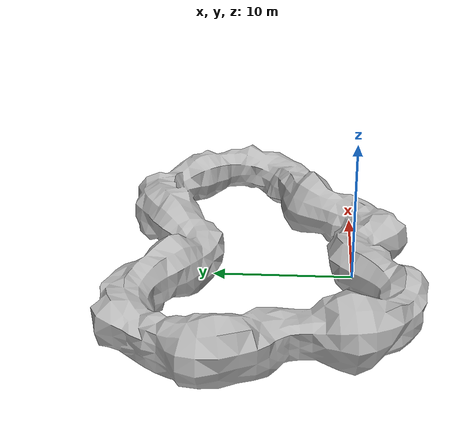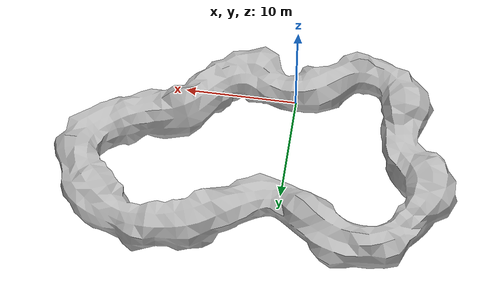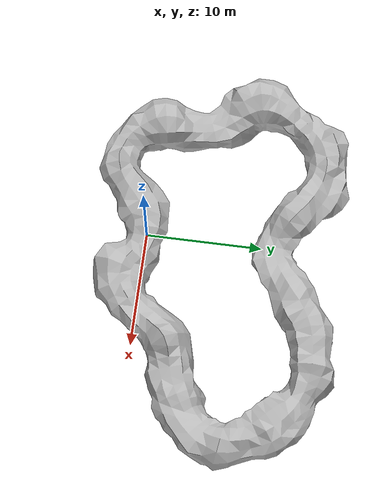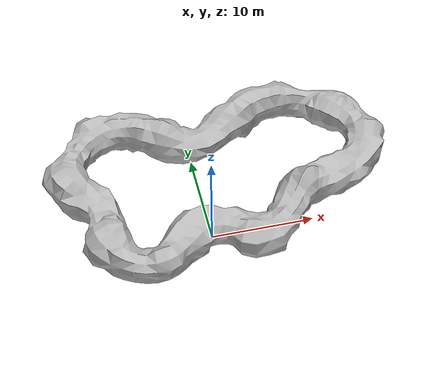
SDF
<?xml version="1.0" ?>
<sdf version="1.5">
  <world name="default">
    <include>
      <uri>model://simple_cave</uri>
    </include>
  </world>
</sdf>

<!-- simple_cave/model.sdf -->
<sdf version="1.5">
  <model name="simple_cave">
    <static>true</static>
    <pose>0 0 0 0 0 0</pose>
    <link name="simple_cave">
      <collision name="collision">
        <geometry>
          <mesh>
            <uri>model://simple_cave/cave.dae</uri>
            <scale>2 2 2</scale>
          </mesh>
        </geometry>
        <surface>
        <friction>
          <ode>
            <mu>50.0</mu>
            <mu2>50.0</mu2>
            <fdir1>0.000000 0.000000 0.000000</fdir1>
            <slip1>0.000000</slip1>
            <slip2>0.000000</slip2>
          </ode>
        </friction>
      </surface>
      </collision>
      <visual name="visual">
        <geometry>
          <mesh>
            <uri>model://simple_cave/cave.dae</uri>
            <scale>2 2 2</scale>
          </mesh>
        </geometry>
        <cast_shadows>true</cast_shadows>
      </visual>
    </link>
  </model>
</sdf>
